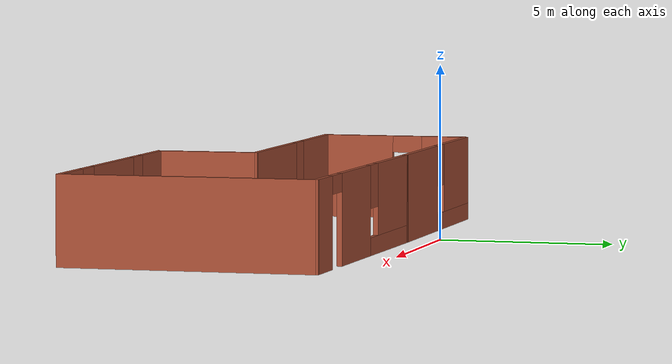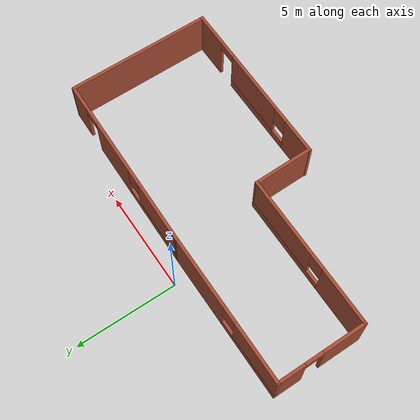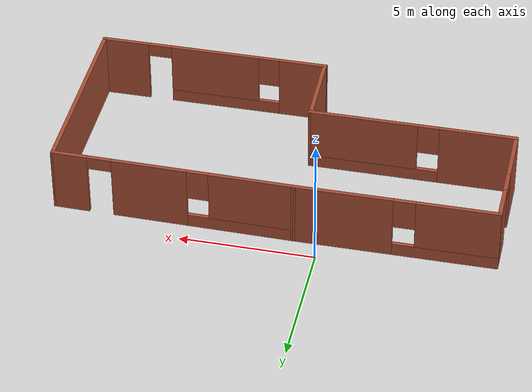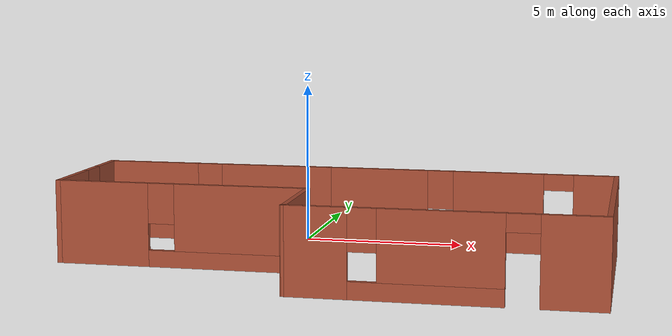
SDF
<?xml version='1.0'?>
<sdf version='1.6'>
  <model name='mybuilding'>
    <pose frame=''>1.71208 -4.41176 0 0 -0 0</pose>
    <link name='Wall_0'>
      <pose frame=''>-4.43708 3.61176 0 0 -0 3.14159</pose>
      <visual name='Wall_0_Visual_0'>
        <pose frame=''>-1.91745 0 1.25 0 -0 0</pose>
        <geometry>
          <box>
            <size>3.6651 0.15 2.5</size>
          </box>
        </geometry>
        <material>
          <script>
            <uri>file://media/materials/scripts/gazebo.material</uri>
            <name>Gazebo/Bricks</name>
          </script>
          <ambient>0.760784 0.662745 0.627451 1</ambient>
        </material>
        <meta>
          <layer>0</layer>
        </meta>
      </visual>
      <collision name='Wall_0_Collision_0'>
        <geometry>
          <box>
            <size>3.6651 0.15 2.5</size>
          </box>
        </geometry>
        <pose frame=''>-1.91745 0 1.25 0 -0 0</pose>
      </collision>
      <visual name='Wall_0_Visual_1'>
        <pose frame=''>1.83255 0 0.25 0 -0 0</pose>
        <geometry>
          <box>
            <size>3.8349 0.15 0.5</size>
          </box>
        </geometry>
        <material>
          <script>
            <uri>file://media/materials/scripts/gazebo.material</uri>
            <name>Gazebo/Bricks</name>
          </script>
          <ambient>0.760784 0.662745 0.627451 1</ambient>
        </material>
        <meta>
          <layer>0</layer>
        </meta>
      </visual>
      <collision name='Wall_0_Collision_1'>
        <geometry>
          <box>
            <size>3.8349 0.15 0.5</size>
          </box>
        </geometry>
        <pose frame=''>1.83255 0 0.25 0 -0 0</pose>
      </collision>
      <visual name='Wall_0_Visual_2'>
        <pose frame=''>2.23255 0 1.5 0 -0 0</pose>
        <geometry>
          <box>
            <size>3.0349 0.15 2</size>
          </box>
        </geometry>
        <material>
          <script>
            <uri>file://media/materials/scripts/gazebo.material</uri>
            <name>Gazebo/Bricks</name>
          </script>
          <ambient>0.760784 0.662745 0.627451 1</ambient>
        </material>
        <meta>
          <layer>0</layer>
        </meta>
      </visual>
      <collision name='Wall_0_Collision_2'>
        <geometry>
          <box>
            <size>3.0349 0.15 2</size>
          </box>
        </geometry>
        <pose frame=''>2.23255 0 1.5 0 -0 0</pose>
      </collision>
      <visual name='Wall_0_Visual_3'>
        <pose frame=''>0.315097 0 1.9 0 -0 0</pose>
        <geometry>
          <box>
            <size>0.8 0.15 1.2</size>
          </box>
        </geometry>
        <material>
          <script>
            <uri>file://media/materials/scripts/gazebo.material</uri>
            <name>Gazebo/Bricks</name>
          </script>
          <ambient>0.760784 0.662745 0.627451 1</ambient>
        </material>
        <meta>
          <layer>0</layer>
        </meta>
      </visual>
      <collision name='Wall_0_Collision_3'>
        <geometry>
          <box>
            <size>0.8 0.15 1.2</size>
          </box>
        </geometry>
        <pose frame=''>0.315097 0 1.9 0 -0 0</pose>
      </collision>
    </link>
    <link name='Wall_1'>
      <pose frame=''>-8.11208 1.43676 0 0 0 -1.5708</pose>
      <visual name='Wall_1_Visual_0'>
        <pose frame=''>-1.54278 0 1.25 0 -0 0</pose>
        <geometry>
          <box>
            <size>1.41444 0.15 2.5</size>
          </box>
        </geometry>
        <material>
          <script>
            <uri>file://media/materials/scripts/gazebo.material</uri>
            <name>Gazebo/Bricks</name>
          </script>
          <ambient>0.760784 0.662745 0.627451 1</ambient>
        </material>
        <meta>
          <layer>0</layer>
        </meta>
      </visual>
      <collision name='Wall_1_Collision_0'>
        <geometry>
          <box>
            <size>1.41444 0.15 2.5</size>
          </box>
        </geometry>
        <pose frame=''>-1.54278 0 1.25 0 -0 0</pose>
      </collision>
      <visual name='Wall_1_Visual_1'>
        <pose frame=''>1.15722 0 1.25 0 -0 0</pose>
        <geometry>
          <box>
            <size>2.18556 0.15 2.5</size>
          </box>
        </geometry>
        <material>
          <script>
            <uri>file://media/materials/scripts/gazebo.material</uri>
            <name>Gazebo/Bricks</name>
          </script>
          <ambient>0.760784 0.662745 0.627451 1</ambient>
        </material>
        <meta>
          <layer>0</layer>
        </meta>
      </visual>
      <collision name='Wall_1_Collision_1'>
        <geometry>
          <box>
            <size>2.18556 0.15 2.5</size>
          </box>
        </geometry>
        <pose frame=''>1.15722 0 1.25 0 -0 0</pose>
      </collision>
      <visual name='Wall_1_Visual_2'>
        <pose frame=''>-0.385556 0 2.25 0 -0 0</pose>
        <geometry>
          <box>
            <size>0.9 0.15 0.5</size>
          </box>
        </geometry>
        <material>
          <script>
            <uri>file://media/materials/scripts/gazebo.material</uri>
            <name>Gazebo/Bricks</name>
          </script>
          <ambient>0.760784 0.662745 0.627451 1</ambient>
        </material>
        <meta>
          <layer>0</layer>
        </meta>
      </visual>
      <collision name='Wall_1_Collision_2'>
        <geometry>
          <box>
            <size>0.9 0.15 0.5</size>
          </box>
        </geometry>
        <pose frame=''>-0.385556 0 2.25 0 -0 0</pose>
      </collision>
    </link>
    <link name='Wall_2'>
      <pose frame=''>-4.31208 -0.738236 0 0 -0 0</pose>
      <visual name='Wall_2_Visual_0'>
        <pose frame=''>-2.43402 0 1.25 0 -0 0</pose>
        <geometry>
          <box>
            <size>2.88195 0.15 2.5</size>
          </box>
        </geometry>
        <material>
          <script>
            <uri>file://media/materials/scripts/gazebo.material</uri>
            <name>Gazebo/Bricks</name>
          </script>
          <ambient>0.760784 0.662745 0.627451 1</ambient>
        </material>
        <meta>
          <layer>0</layer>
        </meta>
      </visual>
      <collision name='Wall_2_Collision_0'>
        <geometry>
          <box>
            <size>2.88195 0.15 2.5</size>
          </box>
        </geometry>
        <pose frame=''>-2.43402 0 1.25 0 -0 0</pose>
      </collision>
      <visual name='Wall_2_Visual_1'>
        <pose frame=''>1.44098 0 0.25 0 -0 0</pose>
        <geometry>
          <box>
            <size>4.86805 0.15 0.5</size>
          </box>
        </geometry>
        <material>
          <script>
            <uri>file://media/materials/scripts/gazebo.material</uri>
            <name>Gazebo/Bricks</name>
          </script>
          <ambient>0.760784 0.662745 0.627451 1</ambient>
        </material>
        <meta>
          <layer>0</layer>
        </meta>
      </visual>
      <collision name='Wall_2_Collision_1'>
        <geometry>
          <box>
            <size>4.86805 0.15 0.5</size>
          </box>
        </geometry>
        <pose frame=''>1.44098 0 0.25 0 -0 0</pose>
      </collision>
      <visual name='Wall_2_Visual_2'>
        <pose frame=''>1.84098 0 1.5 0 -0 0</pose>
        <geometry>
          <box>
            <size>4.06805 0.15 2</size>
          </box>
        </geometry>
        <material>
          <script>
            <uri>file://media/materials/scripts/gazebo.material</uri>
            <name>Gazebo/Bricks</name>
          </script>
          <ambient>0.760784 0.662745 0.627451 1</ambient>
        </material>
        <meta>
          <layer>0</layer>
        </meta>
      </visual>
      <collision name='Wall_2_Collision_2'>
        <geometry>
          <box>
            <size>4.06805 0.15 2</size>
          </box>
        </geometry>
        <pose frame=''>1.84098 0 1.5 0 -0 0</pose>
      </collision>
      <visual name='Wall_2_Visual_3'>
        <pose frame=''>-0.593048 0 1.9 0 -0 0</pose>
        <geometry>
          <box>
            <size>0.8 0.15 1.2</size>
          </box>
        </geometry>
        <material>
          <script>
            <uri>file://media/materials/scripts/gazebo.material</uri>
            <name>Gazebo/Bricks</name>
          </script>
          <ambient>0.760784 0.662745 0.627451 1</ambient>
        </material>
        <meta>
          <layer>0</layer>
        </meta>
      </visual>
      <collision name='Wall_2_Collision_3'>
        <geometry>
          <box>
            <size>0.8 0.15 1.2</size>
          </box>
        </geometry>
        <pose frame=''>-0.593048 0 1.9 0 -0 0</pose>
      </collision>
    </link>
    <link name='Wall_3'>
      <collision name='Wall_3_Collision'>
        <geometry>
          <box>
            <size>3.02397 0.15 2.5</size>
          </box>
        </geometry>
        <pose frame=''>0 0 1.25 0 -0 0</pose>
      </collision>
      <visual name='Wall_3_Visual'>
        <pose frame=''>0 0 1.25 0 -0 0</pose>
        <geometry>
          <box>
            <size>3.02397 0.15 2.5</size>
          </box>
        </geometry>
        <material>
          <script>
            <uri>file://media/materials/scripts/gazebo.material</uri>
            <name>Gazebo/Bricks</name>
          </script>
          <ambient>0.760784 0.662745 0.627451 1</ambient>
        </material>
        <meta>
          <layer>0</layer>
        </meta>
      </visual>
      <pose frame=''>-0.488951 -2.1748 0 0 0 -1.5547</pose>
    </link>
    <link name='Wall_4'>
      <pose frame=''>3.81105 -3.61137 0 0 -0 0</pose>
      <visual name='Wall_4_Visual_0'>
        <pose frame=''>-3.45714 0 1.25 0 -0 0</pose>
        <geometry>
          <box>
            <size>1.83572 0.15 2.5</size>
          </box>
        </geometry>
        <material>
          <script>
            <uri>file://media/materials/scripts/gazebo.material</uri>
            <name>Gazebo/Bricks</name>
          </script>
          <ambient>0.760784 0.662745 0.627451 1</ambient>
        </material>
        <meta>
          <layer>0</layer>
        </meta>
      </visual>
      <collision name='Wall_4_Collision_0'>
        <geometry>
          <box>
            <size>1.83572 0.15 2.5</size>
          </box>
        </geometry>
        <pose frame=''>-3.45714 0 1.25 0 -0 0</pose>
      </collision>
      <visual name='Wall_4_Visual_1'>
        <pose frame=''>3.46888 0 1.25 0 -0 0</pose>
        <geometry>
          <box>
            <size>1.81224 0.15 2.5</size>
          </box>
        </geometry>
        <material>
          <script>
            <uri>file://media/materials/scripts/gazebo.material</uri>
            <name>Gazebo/Bricks</name>
          </script>
          <ambient>0.760784 0.662745 0.627451 1</ambient>
        </material>
        <meta>
          <layer>0</layer>
        </meta>
      </visual>
      <collision name='Wall_4_Collision_1'>
        <geometry>
          <box>
            <size>1.81224 0.15 2.5</size>
          </box>
        </geometry>
        <pose frame=''>3.46888 0 1.25 0 -0 0</pose>
      </collision>
      <visual name='Wall_4_Visual_2'>
        <pose frame=''>-0.438258 0 0.25 0 -0 0</pose>
        <geometry>
          <box>
            <size>4.20204 0.15 0.5</size>
          </box>
        </geometry>
        <material>
          <script>
            <uri>file://media/materials/scripts/gazebo.material</uri>
            <name>Gazebo/Bricks</name>
          </script>
          <ambient>0.760784 0.662745 0.627451 1</ambient>
        </material>
        <meta>
          <layer>0</layer>
        </meta>
      </visual>
      <collision name='Wall_4_Collision_2'>
        <geometry>
          <box>
            <size>4.20204 0.15 0.5</size>
          </box>
        </geometry>
        <pose frame=''>-0.438258 0 0.25 0 -0 0</pose>
      </collision>
      <visual name='Wall_4_Visual_3'>
        <pose frame=''>-0.038258 0 1.5 0 -0 0</pose>
        <geometry>
          <box>
            <size>3.40204 0.15 2</size>
          </box>
        </geometry>
        <material>
          <script>
            <uri>file://media/materials/scripts/gazebo.material</uri>
            <name>Gazebo/Bricks</name>
          </script>
          <ambient>0.760784 0.662745 0.627451 1</ambient>
        </material>
        <meta>
          <layer>0</layer>
        </meta>
      </visual>
      <collision name='Wall_4_Collision_3'>
        <geometry>
          <box>
            <size>3.40204 0.15 2</size>
          </box>
        </geometry>
        <pose frame=''>-0.038258 0 1.5 0 -0 0</pose>
      </collision>
      <visual name='Wall_4_Visual_4'>
        <pose frame=''>-2.13928 0 1.9 0 -0 0</pose>
        <geometry>
          <box>
            <size>0.8 0.15 1.2</size>
          </box>
        </geometry>
        <material>
          <script>
            <uri>file://media/materials/scripts/gazebo.material</uri>
            <name>Gazebo/Bricks</name>
          </script>
          <ambient>0.760784 0.662745 0.627451 1</ambient>
        </material>
        <meta>
          <layer>0</layer>
        </meta>
      </visual>
      <collision name='Wall_4_Collision_4'>
        <geometry>
          <box>
            <size>0.8 0.15 1.2</size>
          </box>
        </geometry>
        <pose frame=''>-2.13928 0 1.9 0 -0 0</pose>
      </collision>
      <visual name='Wall_4_Visual_5'>
        <pose frame=''>2.11276 0 2.25 0 -0 0</pose>
        <geometry>
          <box>
            <size>0.9 0.15 0.5</size>
          </box>
        </geometry>
        <material>
          <script>
            <uri>file://media/materials/scripts/gazebo.material</uri>
            <name>Gazebo/Bricks</name>
          </script>
          <ambient>0.760784 0.662745 0.627451 1</ambient>
        </material>
        <meta>
          <layer>0</layer>
        </meta>
      </visual>
      <collision name='Wall_4_Collision_5'>
        <geometry>
          <box>
            <size>0.9 0.15 0.5</size>
          </box>
        </geometry>
        <pose frame=''>2.11276 0 2.25 0 -0 0</pose>
      </collision>
    </link>
    <link name='Wall_6'>
      <collision name='Wall_6_Collision'>
        <geometry>
          <box>
            <size>7.25 0.15 2.5</size>
          </box>
        </geometry>
        <pose frame=''>0 0 1.25 0 -0 0</pose>
      </collision>
      <visual name='Wall_6_Visual'>
        <pose frame=''>0 0 1.25 0 -0 0</pose>
        <geometry>
          <box>
            <size>7.25 0.15 2.5</size>
          </box>
        </geometry>
        <material>
          <script>
            <uri>file://media/materials/scripts/gazebo.material</uri>
            <name>Gazebo/Bricks</name>
          </script>
          <ambient>0.760784 0.662745 0.627451 1</ambient>
        </material>
        <meta>
          <layer>0</layer>
        </meta>
      </visual>
      <pose frame=''>8.11105 -0.061367 0 0 -0 1.5708</pose>
    </link>
    <link name='Wall_7'>
      <pose frame=''>3.67448 3.5502 0 0 -0 3.12772</pose>
      <visual name='Wall_7_Visual_0'>
        <pose frame=''>-3.83357 0 1.25 0 -0 0</pose>
        <geometry>
          <box>
            <size>1.35684 0.15 2.5</size>
          </box>
        </geometry>
        <material>
          <script>
            <uri>file://media/materials/scripts/gazebo.material</uri>
            <name>Gazebo/Bricks</name>
          </script>
          <ambient>0.760784 0.662745 0.627451 1</ambient>
        </material>
        <meta>
          <layer>0</layer>
        </meta>
      </visual>
      <collision name='Wall_7_Collision_0'>
        <geometry>
          <box>
            <size>1.35684 0.15 2.5</size>
          </box>
        </geometry>
        <pose frame=''>-3.83357 0 1.25 0 -0 0</pose>
      </collision>
      <visual name='Wall_7_Visual_1'>
        <pose frame=''>-0.860424 0 1.25 0 -0 0</pose>
        <geometry>
          <box>
            <size>2.78946 0.15 2.5</size>
          </box>
        </geometry>
        <material>
          <script>
            <uri>file://media/materials/scripts/gazebo.material</uri>
            <name>Gazebo/Bricks</name>
          </script>
          <ambient>0.760784 0.662745 0.627451 1</ambient>
        </material>
        <meta>
          <layer>0</layer>
        </meta>
      </visual>
      <collision name='Wall_7_Collision_1'>
        <geometry>
          <box>
            <size>2.78946 0.15 2.5</size>
          </box>
        </geometry>
        <pose frame=''>-0.860424 0 1.25 0 -0 0</pose>
      </collision>
      <visual name='Wall_7_Visual_2'>
        <pose frame=''>2.52315 0 0.25 0 -0 0</pose>
        <geometry>
          <box>
            <size>3.97769 0.15 0.5</size>
          </box>
        </geometry>
        <material>
          <script>
            <uri>file://media/materials/scripts/gazebo.material</uri>
            <name>Gazebo/Bricks</name>
          </script>
          <ambient>0.760784 0.662745 0.627451 1</ambient>
        </material>
        <meta>
          <layer>0</layer>
        </meta>
      </visual>
      <collision name='Wall_7_Collision_2'>
        <geometry>
          <box>
            <size>3.97769 0.15 0.5</size>
          </box>
        </geometry>
        <pose frame=''>2.52315 0 0.25 0 -0 0</pose>
      </collision>
      <visual name='Wall_7_Visual_3'>
        <pose frame=''>2.92315 0 1.5 0 -0 0</pose>
        <geometry>
          <box>
            <size>3.17768 0.15 2</size>
          </box>
        </geometry>
        <material>
          <script>
            <uri>file://media/materials/scripts/gazebo.material</uri>
            <name>Gazebo/Bricks</name>
          </script>
          <ambient>0.760784 0.662745 0.627451 1</ambient>
        </material>
        <meta>
          <layer>0</layer>
        </meta>
      </visual>
      <collision name='Wall_7_Collision_3'>
        <geometry>
          <box>
            <size>3.17768 0.15 2</size>
          </box>
        </geometry>
        <pose frame=''>2.92315 0 1.5 0 -0 0</pose>
      </collision>
      <visual name='Wall_7_Visual_4'>
        <pose frame=''>0.934307 0 1.9 0 -0 0</pose>
        <geometry>
          <box>
            <size>0.8 0.15 1.2</size>
          </box>
        </geometry>
        <material>
          <script>
            <uri>file://media/materials/scripts/gazebo.material</uri>
            <name>Gazebo/Bricks</name>
          </script>
          <ambient>0.760784 0.662745 0.627451 1</ambient>
        </material>
        <meta>
          <layer>0</layer>
        </meta>
      </visual>
      <collision name='Wall_7_Collision_4'>
        <geometry>
          <box>
            <size>0.8 0.15 1.2</size>
          </box>
        </geometry>
        <pose frame=''>0.934307 0 1.9 0 -0 0</pose>
      </collision>
      <visual name='Wall_7_Visual_5'>
        <pose frame=''>-2.70515 0 2.25 0 -0 0</pose>
        <geometry>
          <box>
            <size>0.9 0.15 0.5</size>
          </box>
        </geometry>
        <material>
          <script>
            <uri>file://media/materials/scripts/gazebo.material</uri>
            <name>Gazebo/Bricks</name>
          </script>
          <ambient>0.760784 0.662745 0.627451 1</ambient>
        </material>
        <meta>
          <layer>0</layer>
        </meta>
      </visual>
      <collision name='Wall_7_Collision_5'>
        <geometry>
          <box>
            <size>0.9 0.15 0.5</size>
          </box>
        </geometry>
        <pose frame=''>-2.70515 0 2.25 0 -0 0</pose>
      </collision>
    </link>
    <static>1</static>
  </model>
</sdf>
